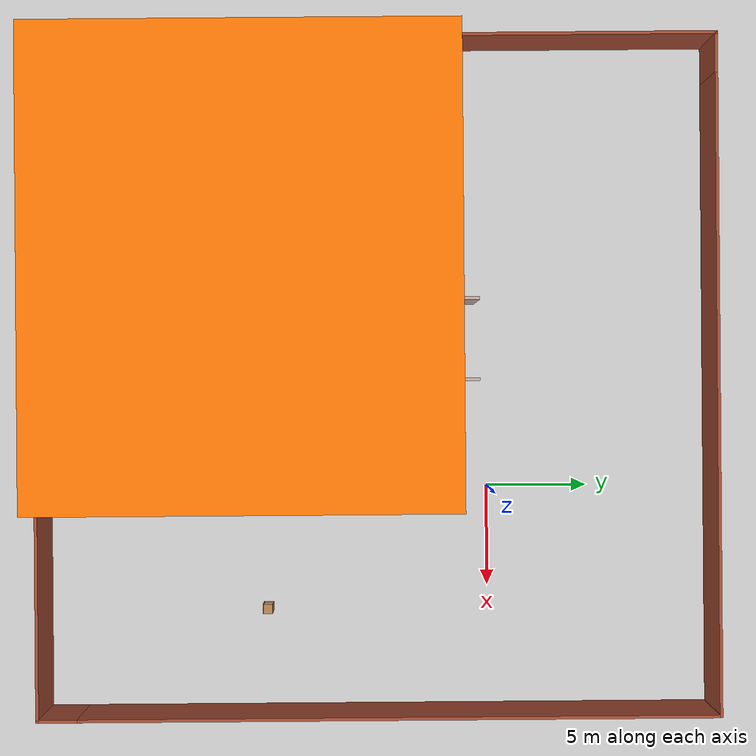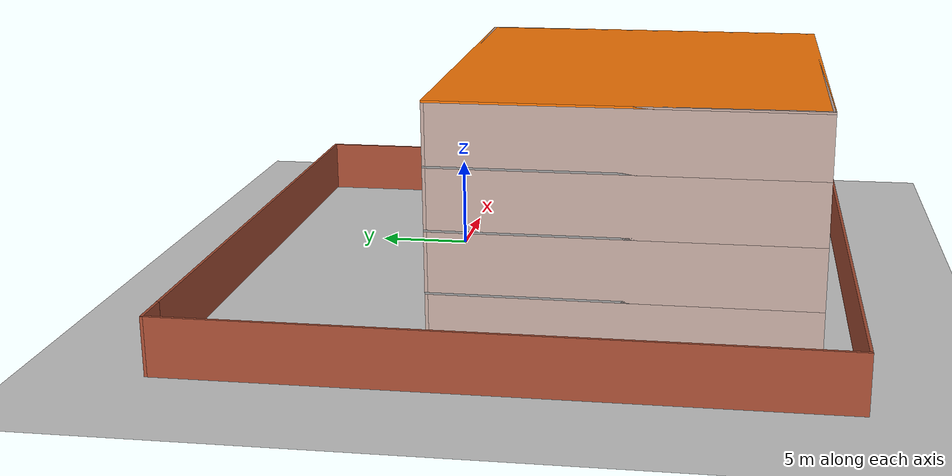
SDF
<sdf version="1.6">
 <world name="default">
  <light name="sun" type="directional">
   <pose>0 0 10 0 -0 0</pose>
   <diffuse>0.8 0.8 0.8 1</diffuse>
   <specular>0.2 0.2 0.2 1</specular>
   <attenuation>
    <range>1000</range>
    <constant>0.9</constant>
    <linear>0.01</linear>
    <quadratic>0.001</quadratic>
   </attenuation>
   <direction>-0.5 0.1 -0.9</direction>
  </light>
  <model name="ground_plane">
   <static>1</static>
   <link name="link">
    <collision name="collision">
     <geometry><plane><normal>0 0 1</normal><size>100 100</size></plane></geometry>
     <surface><friction><ode><mu>100</mu><mu2>50</mu2></ode></friction></surface>
    </collision>
    <visual name="visual">
     <cast_shadows>0</cast_shadows>
     <geometry><plane><normal>0 0 1</normal><size>100 100</size></plane></geometry>
     <material>
      <script><uri>file://media/materials/scripts/gazebo.material</uri><name>Gazebo/Grey</name></script>
     </material>
    </visual>
   </link>
  </model>
  <gravity>0 0 -9.8</gravity>
  <magnetic_field>6e-06 2.3e-05 -4.2e-05</magnetic_field>
  <atmosphere type="adiabatic"/>
  <physics name="default_physics" default="0" type="ode">
   <max_step_size>0.001</max_step_size>
   <real_time_factor>1</real_time_factor>
   <real_time_update_rate>1000</real_time_update_rate>
  </physics>
  <scene><ambient>0.4 0.4 0.4 1</ambient><background>0.7 0.7 0.7 1</background><shadows>1</shadows></scene>
  <audio><device>default</device></audio>
  <spherical_coordinates>
   <surface_model>EARTH_WGS84</surface_model>
   <latitude_deg>0</latitude_deg>
   <longitude_deg>0</longitude_deg>
   <elevation>0</elevation>
   <heading_deg>0</heading_deg>
  </spherical_coordinates>
  <model name="model_1">
   <pose>-4.5 -4.5 0 0 -0 0</pose>
   <link name="Wall_0">
    <collision name="Wall_0_Collision">
     <geometry><box><size>31.15 0.15 3</size></box></geometry>
     <pose>0 0 1.5 0 -0 0</pose>
    </collision>
    <visual name="Wall_0_Visual">
     <pose>0 0 1.5 0 -0 0</pose>
     <geometry><box><size>31.15 0.15 3</size></box></geometry>
     <material>
      <script><uri>file://media/materials/scripts/gazebo.material</uri><name>Gazebo/Bricks</name></script>
      <ambient>1 1 1 1</ambient>
     </material>
     <meta><layer>0</layer></meta>
    </visual>
    <pose>-0 15.5 0 0 -0 0</pose>
   </link>
   <link name="Wall_2">
    <collision name="Wall_2_Collision">
     <geometry><box><size>31.15 0.15 3</size></box></geometry>
     <pose>0 0 1.5 0 -0 0</pose>
    </collision>
    <visual name="Wall_2_Visual">
     <pose>0 0 1.5 0 -0 0</pose>
     <geometry><box><size>31.15 0.15 3</size></box></geometry>
     <material>
      <script><uri>file://media/materials/scripts/gazebo.material</uri><name>Gazebo/Bricks</name></script>
      <ambient>1 1 1 1</ambient>
     </material>
     <meta><layer>0</layer></meta>
    </visual>
    <pose>15.5 -0 0 0 -0 -1.5708</pose>
   </link>
   <static>1</static>
  </model>
  <model name="building2">
   <pose>-10 -10.325 0 0 -0 0</pose>
   <link name="Floor_0">
    <collision name="Floor_0_Collision">
     <geometry><box><size>20.15 18.15 0.1</size></box></geometry>
     <pose>0 0 0.05 0 -0 0</pose>
    </collision>
    <visual name="Floor_0_Visual">
     <pose>0 0 0.05 0 -0 0</pose>
     <geometry><box><size>20.15 18.15 0.1</size></box></geometry>
     <material>
      <script><uri>file://media/materials/scripts/gazebo.material</uri><name>Gazebo/Grey</name></script>
      <ambient>1 1 1 1</ambient>
     </material>
     <meta><layer>1</layer></meta>
    </visual>
    <pose>-0 -0.675 4 0 -0 0</pose>
   </link>
   <link name="Floor_2">
    <collision name="Floor_2_Collision">
     <geometry><box><size>20.15 18.15 0.1</size></box></geometry>
     <pose>0 0 0.05 0 -0 0</pose>
    </collision>
    <visual name="Floor_2_Visual">
     <pose>0 0 0.05 0 -0 0</pose>
     <geometry><box><size>20.15 18.15 0.1</size></box></geometry>
     <material>
      <script><uri>file://media/materials/scripts/gazebo.material</uri><name>Gazebo/Grey</name></script>
      <ambient>1 1 1 1</ambient>
     </material>
     <meta><layer>2</layer></meta>
    </visual>
    <pose>-0 -0.675 7 0 -0 0</pose>
   </link>
   <link name="Floor_3">
    <collision name="Floor_3_Collision">
     <geometry><box><size>20.15 18.15 0.1</size></box></geometry>
     <pose>0 0 0.05 0 -0 0</pose>
    </collision>
    <visual name="Floor_3_Visual">
     <pose>0 0 0.05 0 -0 0</pose>
     <geometry><box><size>20.15 18.15 0.1</size></box></geometry>
     <material>
      <script><uri>file://media/materials/scripts/gazebo.material</uri><name>Gazebo/Grey</name></script>
      <ambient>1 1 1 1</ambient>
     </material>
     <meta><layer>3</layer></meta>
    </visual>
    <pose>-0 -0.675 10 0 -0 0</pose>
   </link>
   <link name="Floor_8">
    <collision name="Floor_8_Collision">
     <geometry><box><size>20.15 18.15 0.1</size></box></geometry>
     <pose>0 0 0.05 0 -0 0</pose>
    </collision>
    <visual name="Floor_8_Visual">
     <pose>0 0 0.05 0 -0 0</pose>
     <geometry><box><size>20.15 18.15 0.1</size></box></geometry>
     <material>
      <script><uri>file://media/materials/scripts/gazebo.material</uri><name>Gazebo/Grey</name></script>
      <ambient>0.996078 0.47451 0.0196078 1</ambient>
     </material>
     <meta><layer>4</layer></meta>
    </visual>
    <pose>-0 -0.675 13 0 -0 0</pose>
   </link>
   <link name="Wall_11">
    <collision name="Wall_11_Collision">
     <geometry><box><size>1.5 0.15 4</size></box></geometry>
     <pose>0 0 2 0 -0 0</pose>
    </collision>
    <visual name="Wall_11_Visual">
     <pose>0 0 2 0 -0 0</pose>
     <geometry><box><size>1.5 0.15 4</size></box></geometry>
     <material>
      <script><uri>file://media/materials/scripts/gazebo.material</uri><name>Gazebo/Grey</name></script>
      <ambient>0.760784 0.662745 0.627451 1</ambient>
     </material>
     <meta><layer>0</layer></meta>
    </visual>
    <pose>0.8 9 0 0 -0 -1.5708</pose>
   </link>
   <link name="Wall_12">
    <collision name="Wall_12_Collision">
     <geometry><box><size>10.95 0.15 4</size></box></geometry>
     <pose>0 0 2 0 -0 0</pose>
    </collision>
    <visual name="Wall_12_Visual">
     <pose>0 0 2 0 -0 0</pose>
     <geometry><box><size>10.95 0.15 4</size></box></geometry>
     <material>
      <script><uri>file://media/materials/scripts/gazebo.material</uri><name>Gazebo/Grey</name></script>
      <ambient>0.760784 0.662745 0.627451 1</ambient>
     </material>
     <meta><layer>0</layer></meta>
    </visual>
    <pose>-4.6 8.325 0 0 -0 3.14159</pose>
   </link>
   <link name="Wall_14">
    <collision name="Wall_14_Collision">
     <geometry><box><size>18.15 0.15 4</size></box></geometry>
     <pose>0 0 2 0 -0 0</pose>
    </collision>
    <visual name="Wall_14_Visual">
     <pose>0 0 2 0 -0 0</pose>
     <geometry><box><size>18.15 0.15 4</size></box></geometry>
     <material>
      <script><uri>file://media/materials/scripts/gazebo.material</uri><name>Gazebo/Grey</name></script>
      <ambient>0.760784 0.662745 0.627451 1</ambient>
     </material>
     <meta><layer>0</layer></meta>
    </visual>
    <pose>-10 -0.675 0 0 -0 -1.5708</pose>
   </link>
   <link name="Wall_16">
    <collision name="Wall_16_Collision">
     <geometry><box><size>20.15 0.15 4</size></box></geometry>
     <pose>0 0 2 0 -0 0</pose>
    </collision>
    <visual name="Wall_16_Visual">
     <pose>0 0 2 0 -0 0</pose>
     <geometry><box><size>20.15 0.15 4</size></box></geometry>
     <material>
      <script><uri>file://media/materials/scripts/gazebo.material</uri><name>Gazebo/Grey</name></script>
      <ambient>0.760784 0.662745 0.627451 1</ambient>
     </material>
     <meta><layer>0</layer></meta>
    </visual>
    <pose>-0 -9.675 0 0 -0 0</pose>
   </link>
   <link name="Wall_24">
    <collision name="Wall_24_Collision">
     <geometry><box><size>18.15 0.15 3</size></box></geometry>
     <pose>0 0 1.5 0 -0 0</pose>
    </collision>
    <visual name="Wall_24_Visual">
     <pose>0 0 1.5 0 -0 0</pose>
     <geometry><box><size>18.15 0.15 3</size></box></geometry>
     <material>
      <script><uri>file://media/materials/scripts/gazebo.material</uri><name>Gazebo/Grey</name></script>
      <ambient>0.760784 0.662745 0.627451 1</ambient>
     </material>
     <meta><layer>1</layer></meta>
    </visual>
    <pose>-10 -0.675 4 0 -0 -1.5708</pose>
   </link>
   <link name="Wall_25">
    <collision name="Wall_25_Collision">
     <geometry><box><size>20.15 0.15 3</size></box></geometry>
     <pose>0 0 1.5 0 -0 0</pose>
    </collision>
    <visual name="Wall_25_Visual">
     <pose>0 0 1.5 0 -0 0</pose>
     <geometry><box><size>20.15 0.15 3</size></box></geometry>
     <material>
      <script><uri>file://media/materials/scripts/gazebo.material</uri><name>Gazebo/Grey</name></script>
      <ambient>0.760784 0.662745 0.627451 1</ambient>
     </material>
     <meta><layer>1</layer></meta>
    </visual>
    <pose>-0 -9.675 4 0 -0 0</pose>
   </link>
   <link name="Wall_31">
    <collision name="Wall_31_Collision">
     <geometry><box><size>20.15 0.15 3</size></box></geometry>
     <pose>0 0 1.5 0 -0 0</pose>
    </collision>
    <visual name="Wall_31_Visual">
     <pose>0 0 1.5 0 -0 0</pose>
     <geometry><box><size>20.15 0.15 3</size></box></geometry>
     <material>
      <script><uri>file://media/materials/scripts/gazebo.material</uri><name>Gazebo/Grey</name></script>
      <ambient>0.760784 0.662745 0.627451 1</ambient>
     </material>
     <meta><layer>1</layer></meta>
    </visual>
    <pose>-0 8.325 4 0 -0 0</pose>
   </link>
   <link name="Wall_33">
    <collision name="Wall_33_Collision">
     <geometry><box><size>18 0.15 3</size></box></geometry>
     <pose>0 0 1.5 0 -0 0</pose>
    </collision>
    <visual name="Wall_33_Visual">
     <pose>0 0 1.5 0 -0 0</pose>
     <geometry><box><size>18 0.15 3</size></box></geometry>
     <material>
      <script><uri>file://media/materials/scripts/gazebo.material</uri><name>Gazebo/Grey</name></script>
      <ambient>0.760784 0.662745 0.627451 1</ambient>
     </material>
     <meta><layer>1</layer></meta>
    </visual>
    <pose>10 -0.6 4 0 -0 -1.5708</pose>
   </link>
   <link name="Wall_4">
    <collision name="Wall_4_Collision">
     <geometry><box><size>5.15 0.15 4</size></box></geometry>
     <pose>0 0 2 0 -0 0</pose>
    </collision>
    <visual name="Wall_4_Visual">
     <pose>0 0 2 0 -0 0</pose>
     <geometry><box><size>5.15 0.15 4</size></box></geometry>
     <material>
      <script><uri>file://media/materials/scripts/gazebo.material</uri><name>Gazebo/Grey</name></script>
      <ambient>0.760784 0.662745 0.627451 1</ambient>
     </material>
     <meta><layer>0</layer></meta>
    </visual>
    <pose>10 5.825 0 0 -0 -1.5708</pose>
   </link>
   <link name="Wall_42">
    <collision name="Wall_42_Collision">
     <geometry><box><size>18.15 0.15 3</size></box></geometry>
     <pose>0 0 1.5 0 -0 0</pose>
    </collision>
    <visual name="Wall_42_Visual">
     <pose>0 0 1.5 0 -0 0</pose>
     <geometry><box><size>18.15 0.15 3</size></box></geometry>
     <material>
      <script><uri>file://media/materials/scripts/gazebo.material</uri><name>Gazebo/Grey</name></script>
      <ambient>0.760784 0.662745 0.627451 1</ambient>
     </material>
     <meta><layer>2</layer></meta>
    </visual>
    <pose>-10 -0.675 7 0 -0 -1.5708</pose>
   </link>
   <link name="Wall_43">
    <collision name="Wall_43_Collision">
     <geometry><box><size>20.15 0.15 3</size></box></geometry>
     <pose>0 0 1.5 0 -0 0</pose>
    </collision>
    <visual name="Wall_43_Visual">
     <pose>0 0 1.5 0 -0 0</pose>
     <geometry><box><size>20.15 0.15 3</size></box></geometry>
     <material>
      <script><uri>file://media/materials/scripts/gazebo.material</uri><name>Gazebo/Grey</name></script>
      <ambient>0.760784 0.662745 0.627451 1</ambient>
     </material>
     <meta><layer>2</layer></meta>
    </visual>
    <pose>-0 -9.675 7 0 -0 0</pose>
   </link>
   <link name="Wall_44">
    <collision name="Wall_44_Collision">
     <geometry><box><size>20.15 0.15 3</size></box></geometry>
     <pose>0 0 1.5 0 -0 0</pose>
    </collision>
    <visual name="Wall_44_Visual">
     <pose>0 0 1.5 0 -0 0</pose>
     <geometry><box><size>20.15 0.15 3</size></box></geometry>
     <material>
      <script><uri>file://media/materials/scripts/gazebo.material</uri><name>Gazebo/Grey</name></script>
      <ambient>0.760784 0.662745 0.627451 1</ambient>
     </material>
     <meta><layer>2</layer></meta>
    </visual>
    <pose>-0 8.325 7 0 -0 0</pose>
   </link>
   <link name="Wall_45">
    <collision name="Wall_45_Collision">
     <geometry><box><size>18 0.15 3</size></box></geometry>
     <pose>0 0 1.5 0 -0 0</pose>
    </collision>
    <visual name="Wall_45_Visual">
     <pose>0 0 1.5 0 -0 0</pose>
     <geometry><box><size>18 0.15 3</size></box></geometry>
     <material>
      <script><uri>file://media/materials/scripts/gazebo.material</uri><name>Gazebo/Grey</name></script>
      <ambient>0.760784 0.662745 0.627451 1</ambient>
     </material>
     <meta><layer>2</layer></meta>
    </visual>
    <pose>10 -0.6 7 0 -0 -1.5708</pose>
   </link>
   <link name="Wall_46">
    <collision name="Wall_46_Collision">
     <geometry><box><size>18.15 0.15 3</size></box></geometry>
     <pose>0 0 1.5 0 -0 0</pose>
    </collision>
    <visual name="Wall_46_Visual">
     <pose>0 0 1.5 0 -0 0</pose>
     <geometry><box><size>18.15 0.15 3</size></box></geometry>
     <material>
      <script><uri>file://media/materials/scripts/gazebo.material</uri><name>Gazebo/Grey</name></script>
      <ambient>0.760784 0.662745 0.627451 1</ambient>
     </material>
     <meta><layer>3</layer></meta>
    </visual>
    <pose>-10 -0.675 10 0 -0 -1.5708</pose>
   </link>
   <link name="Wall_47">
    <collision name="Wall_47_Collision">
     <geometry><box><size>20.15 0.15 3</size></box></geometry>
     <pose>0 0 1.5 0 -0 0</pose>
    </collision>
    <visual name="Wall_47_Visual">
     <pose>0 0 1.5 0 -0 0</pose>
     <geometry><box><size>20.15 0.15 3</size></box></geometry>
     <material>
      <script><uri>file://media/materials/scripts/gazebo.material</uri><name>Gazebo/Grey</name></script>
      <ambient>0.760784 0.662745 0.627451 1</ambient>
     </material>
     <meta><layer>3</layer></meta>
    </visual>
    <pose>-0 -9.675 10 0 -0 0</pose>
   </link>
   <link name="Wall_48">
    <collision name="Wall_48_Collision">
     <geometry><box><size>20.15 0.15 3</size></box></geometry>
     <pose>0 0 1.5 0 -0 0</pose>
    </collision>
    <visual name="Wall_48_Visual">
     <pose>0 0 1.5 0 -0 0</pose>
     <geometry><box><size>20.15 0.15 3</size></box></geometry>
     <material>
      <script><uri>file://media/materials/scripts/gazebo.material</uri><name>Gazebo/Grey</name></script>
      <ambient>0.760784 0.662745 0.627451 1</ambient>
     </material>
     <meta><layer>3</layer></meta>
    </visual>
    <pose>-0 8.325 10 0 -0 0</pose>
   </link>
   <link name="Wall_49">
    <collision name="Wall_49_Collision">
     <geometry><box><size>18 0.15 3</size></box></geometry>
     <pose>0 0 1.5 0 -0 0</pose>
    </collision>
    <visual name="Wall_49_Visual">
     <pose>0 0 1.5 0 -0 0</pose>
     <geometry><box><size>18 0.15 3</size></box></geometry>
     <material>
      <script><uri>file://media/materials/scripts/gazebo.material</uri><name>Gazebo/Grey</name></script>
      <ambient>0.760784 0.662745 0.627451 1</ambient>
     </material>
     <meta><layer>3</layer></meta>
    </visual>
    <pose>10 -0.6 10 0 -0 -1.5708</pose>
   </link>
   <link name="Wall_6">
    <collision name="Wall_6_Collision">
     <geometry><box><size>9.15 0.15 4</size></box></geometry>
     <pose>0 0 2 0 -0 0</pose>
    </collision>
    <visual name="Wall_6_Visual">
     <pose>0 0 2 0 -0 0</pose>
     <geometry><box><size>9.15 0.15 4</size></box></geometry>
     <material>
      <script><uri>file://media/materials/scripts/gazebo.material</uri><name>Gazebo/Grey</name></script>
      <ambient>0.760784 0.662745 0.627451 1</ambient>
     </material>
     <meta><layer>0</layer></meta>
    </visual>
    <pose>10 -5.175 0 0 -0 -1.5708</pose>
   </link>
   <link name="Wall_76">
    <collision name="Wall_76_Collision">
     <geometry><box><size>18.15 0.15 0.1</size></box></geometry>
     <pose>0 0 0.05 0 -0 0</pose>
    </collision>
    <visual name="Wall_76_Visual">
     <pose>0 0 0.05 0 -0 0</pose>
     <geometry><box><size>18.15 0.15 0.1</size></box></geometry>
     <material>
      <script><uri>file://media/materials/scripts/gazebo.material</uri><name>Gazebo/Grey</name></script>
      <ambient>0.760784 0.662745 0.627451 1</ambient>
     </material>
     <meta><layer>4</layer></meta>
    </visual>
    <pose>-10 -0.675 13 0 -0 -1.5708</pose>
   </link>
   <link name="Wall_77">
    <collision name="Wall_77_Collision">
     <geometry><box><size>20.15 0.15 0.1</size></box></geometry>
     <pose>0 0 0.05 0 -0 0</pose>
    </collision>
    <visual name="Wall_77_Visual">
     <pose>0 0 0.05 0 -0 0</pose>
     <geometry><box><size>20.15 0.15 0.1</size></box></geometry>
     <material>
      <script><uri>file://media/materials/scripts/gazebo.material</uri><name>Gazebo/Grey</name></script>
      <ambient>0.760784 0.662745 0.627451 1</ambient>
     </material>
     <meta><layer>4</layer></meta>
    </visual>
    <pose>-0 -9.675 13 0 -0 0</pose>
   </link>
   <link name="Wall_78">
    <collision name="Wall_78_Collision">
     <geometry><box><size>20.15 0.15 0.1</size></box></geometry>
     <pose>0 0 0.05 0 -0 0</pose>
    </collision>
    <visual name="Wall_78_Visual">
     <pose>0 0 0.05 0 -0 0</pose>
     <geometry><box><size>20.15 0.15 0.1</size></box></geometry>
     <material>
      <script><uri>file://media/materials/scripts/gazebo.material</uri><name>Gazebo/Grey</name></script>
      <ambient>0.760784 0.662745 0.627451 1</ambient>
     </material>
     <meta><layer>4</layer></meta>
    </visual>
    <pose>-0 8.325 13 0 -0 0</pose>
   </link>
   <link name="Wall_79">
    <collision name="Wall_79_Collision">
     <geometry><box><size>18 0.15 0.1</size></box></geometry>
     <pose>0 0 0.05 0 -0 0</pose>
    </collision>
    <visual name="Wall_79_Visual">
     <pose>0 0 0.05 0 -0 0</pose>
     <geometry><box><size>18 0.15 0.1</size></box></geometry>
     <material>
      <script><uri>file://media/materials/scripts/gazebo.material</uri><name>Gazebo/Grey</name></script>
      <ambient>0.760784 0.662745 0.627451 1</ambient>
     </material>
     <meta><layer>4</layer></meta>
    </visual>
    <pose>10 -0.6 13 0 -0 -1.5708</pose>
   </link>
   <link name="Wall_8">
    <collision name="Wall_8_Collision">
     <geometry><box><size>5.5 0.15 4</size></box></geometry>
     <pose>0 0 2 0 -0 0</pose>
    </collision>
    <visual name="Wall_8_Visual">
     <pose>0 0 2 0 -0 0</pose>
     <geometry><box><size>5.5 0.15 4</size></box></geometry>
     <material>
      <script><uri>file://media/materials/scripts/gazebo.material</uri><name>Gazebo/Grey</name></script>
      <ambient>0.760784 0.662745 0.627451 1</ambient>
     </material>
     <meta><layer>0</layer></meta>
    </visual>
    <pose>7.325 8.325 0 0 -0 3.14159</pose>
   </link>
   <link name="Wall_9">
    <collision name="Wall_9_Collision">
     <geometry><box><size>1.5 0.15 4</size></box></geometry>
     <pose>0 0 2 0 -0 0</pose>
    </collision>
    <visual name="Wall_9_Visual">
     <pose>0 0 2 0 -0 0</pose>
     <geometry><box><size>1.5 0.15 4</size></box></geometry>
     <material>
      <script><uri>file://media/materials/scripts/gazebo.material</uri><name>Gazebo/Grey</name></script>
      <ambient>0.760784 0.662745 0.627451 1</ambient>
     </material>
     <meta><layer>0</layer></meta>
    </visual>
    <pose>4.65 9 0 0 -0 1.5708</pose>
   </link>
   <static>1</static>
  </model>
  <model name="cabinet">
   <static>1</static>
   <link name="cabinet_bottom_plate">
    <inertial>
     <pose>0 0 -1 0 -0 0</pose>
     <inertia><ixx>2.05</ixx><ixy>0</ixy><ixz>0</ixz><iyy>2.05</iyy><iyz>0</iyz><izz>2.05</izz></inertia>
     <mass>25</mass>
    </inertial>
    <collision name="cabinet_bottom_plate_geom">
     <pose>0 0 0.01 0 -0 0</pose>
     <geometry><box><size>0.45 0.45 0.02</size></box></geometry>
    </collision>
    <visual name="cabinet_bottom_plate_geom_visual">
     <pose>0 0 0.01 0 -0 0</pose>
     <geometry><box><size>0.45 0.45 0.02</size></box></geometry>
     <material>
      <script><uri>file://media/materials/scripts/gazebo.material</uri><name>Gazebo/Wood</name></script>
     </material>
    </visual>
    <collision name="cabinet_bottom_plate_geom_cabinet_back_plate">
     <pose>0.235 0 0.51 0 -0 0</pose>
     <geometry><box><size>0.02 0.45 1.02</size></box></geometry>
    </collision>
    <visual name="cabinet_bottom_plate_geom_cabinet_back_plate_visual">
     <pose>0.235 0 0.51 0 -0 0</pose>
     <geometry><box><size>0.02 0.45 1.02</size></box></geometry>
     <material>
      <script><uri>file://media/materials/scripts/gazebo.material</uri><name>Gazebo/Wood</name></script>
     </material>
    </visual>
    <collision name="cabinet_bottom_plate_geom_cabinet_left_plate">
     <pose>0 0.235 0.51 0 -0 0</pose>
     <geometry><box><size>0.45 0.02 1.02</size></box></geometry>
    </collision>
    <visual name="cabinet_bottom_plate_geom_cabinet_left_plate_visual">
     <pose>0 0.235 0.51 0 -0 0</pose>
     <geometry><box><size>0.45 0.02 1.02</size></box></geometry>
     <material>
      <script><uri>file://media/materials/scripts/gazebo.material</uri><name>Gazebo/Wood</name></script>
     </material>
    </visual>
    <collision name="cabinet_bottom_plate_geom_cabinet_middle_plate">
     <pose>0 0 0.51 0 -0 0</pose>
     <geometry><box><size>0.45 0.45 0.02</size></box></geometry>
    </collision>
    <visual name="cabinet_bottom_plate_geom_cabinet_middle_plate_visual">
     <pose>0 0 0.51 0 -0 0</pose>
     <geometry><box><size>0.45 0.45 0.02</size></box></geometry>
     <material>
      <script><uri>file://media/materials/scripts/gazebo.material</uri><name>Gazebo/Wood</name></script>
     </material>
    </visual>
    <collision name="cabinet_bottom_plate_geom_cabinet_right_plate">
     <pose>0 -0.235 0.51 0 -0 0</pose>
     <geometry><box><size>0.45 0.02 1.02</size></box></geometry>
    </collision>
    <visual name="cabinet_bottom_plate_geom_cabinet_right_plate_visual">
     <pose>0 -0.235 0.51 0 -0 0</pose>
     <geometry><box><size>0.45 0.02 1.02</size></box></geometry>
     <material>
      <script><uri>file://media/materials/scripts/gazebo.material</uri><name>Gazebo/Wood</name></script>
     </material>
    </visual>
    <collision name="cabinet_bottom_plate_geom_cabinet_top_plate">
     <pose>0 0 1.01 0 -0 0</pose>
     <geometry><box><size>0.45 0.45 0.02</size></box></geometry>
    </collision>
    <visual name="cabinet_bottom_plate_geom_cabinet_top_plate_visual">
     <pose>0 0 1.01 0 -0 0</pose>
     <geometry><box><size>0.45 0.45 0.02</size></box></geometry>
     <material>
      <script><uri>file://media/materials/scripts/gazebo.material</uri><name>Gazebo/Wood</name></script>
     </material>
    </visual>
   </link>
   <pose>6 -11 0 0 -0 0</pose>
  </model>
  <model name="Untitled">
   <pose>-5.5 -5.5 0 0 -0 0</pose>
   <link name="Wall_0">
    <collision name="Wall_0_Collision">
     <geometry><box><size>2 0.15 3</size></box></geometry>
     <pose>0 0 1.5 0 -0 0</pose>
    </collision>
    <visual name="Wall_0_Visual">
     <pose>0 0 1.5 0 -0 0</pose>
     <geometry><box><size>2 0.15 3</size></box></geometry>
     <material>
      <script><uri>file://media/materials/scripts/gazebo.material</uri><name>Gazebo/Bricks</name></script>
      <ambient>1 1 1 1</ambient>
     </material>
     <meta><layer>0</layer></meta>
    </visual>
    <pose>-15.575 16.5 0 0 -0 3.14159</pose>
   </link>
   <link name="Wall_2">
    <collision name="Wall_2_Collision">
     <geometry><box><size>33.15 0.15 3</size></box></geometry>
     <pose>0 0 1.5 0 -0 0</pose>
    </collision>
    <visual name="Wall_2_Visual">
     <pose>0 0 1.5 0 -0 0</pose>
     <geometry><box><size>33.15 0.15 3</size></box></geometry>
     <material>
      <script><uri>file://media/materials/scripts/gazebo.material</uri><name>Gazebo/Bricks</name></script>
      <ambient>1 1 1 1</ambient>
     </material>
     <meta><layer>0</layer></meta>
    </visual>
    <pose>-16.5 0 0 0 -0 -1.5708</pose>
   </link>
   <link name="Wall_5">
    <collision name="Wall_5_Collision">
     <geometry><box><size>33.15 0.15 3</size></box></geometry>
     <pose>0 0 1.5 0 -0 0</pose>
    </collision>
    <visual name="Wall_5_Visual">
     <pose>0 0 1.5 0 -0 0</pose>
     <geometry><box><size>33.15 0.15 3</size></box></geometry>
     <material>
      <script><uri>file://media/materials/scripts/gazebo.material</uri><name>Gazebo/Bricks</name></script>
      <ambient>1 1 1 1</ambient>
     </material>
     <meta><layer>0</layer></meta>
    </visual>
    <pose>1e-06 -16.5 0 0 -0 0</pose>
   </link>
   <link name="Wall_7">
    <collision name="Wall_7_Collision">
     <geometry><box><size>2.15 0.15 3</size></box></geometry>
     <pose>0 0 1.5 0 -0 0</pose>
    </collision>
    <visual name="Wall_7_Visual">
     <pose>0 0 1.5 0 -0 0</pose>
     <geometry><box><size>2.15 0.15 3</size></box></geometry>
     <material>
      <script><uri>file://media/materials/scripts/gazebo.material</uri><name>Gazebo/Bricks</name></script>
      <ambient>1 1 1 1</ambient>
     </material>
     <meta><layer>0</layer></meta>
    </visual>
    <pose>16.5 -15.5 0 0 -0 1.5708</pose>
   </link>
   <static>1</static>
  </model>
 </world>
</sdf>
